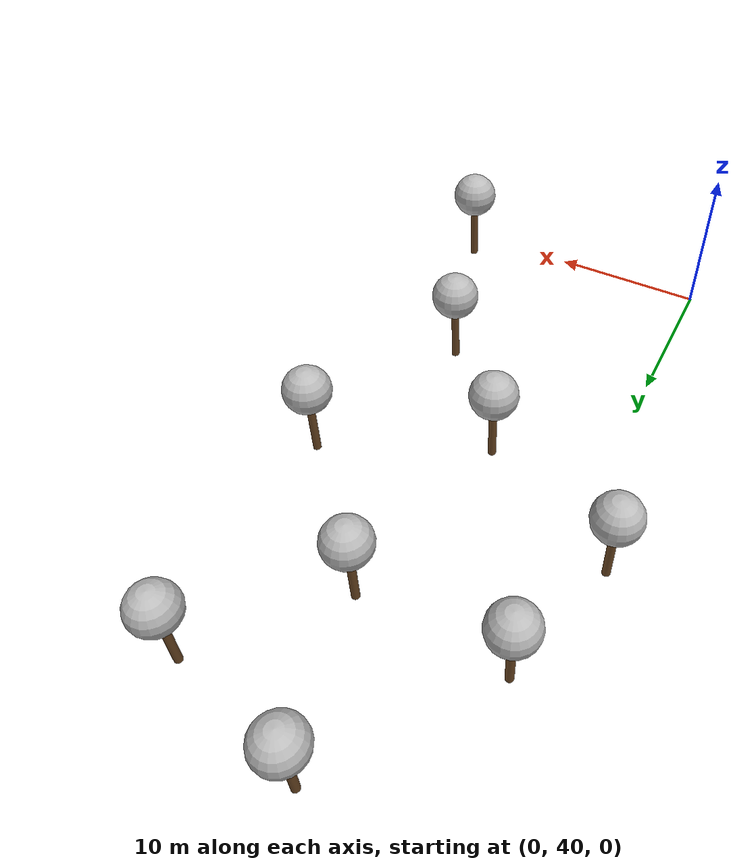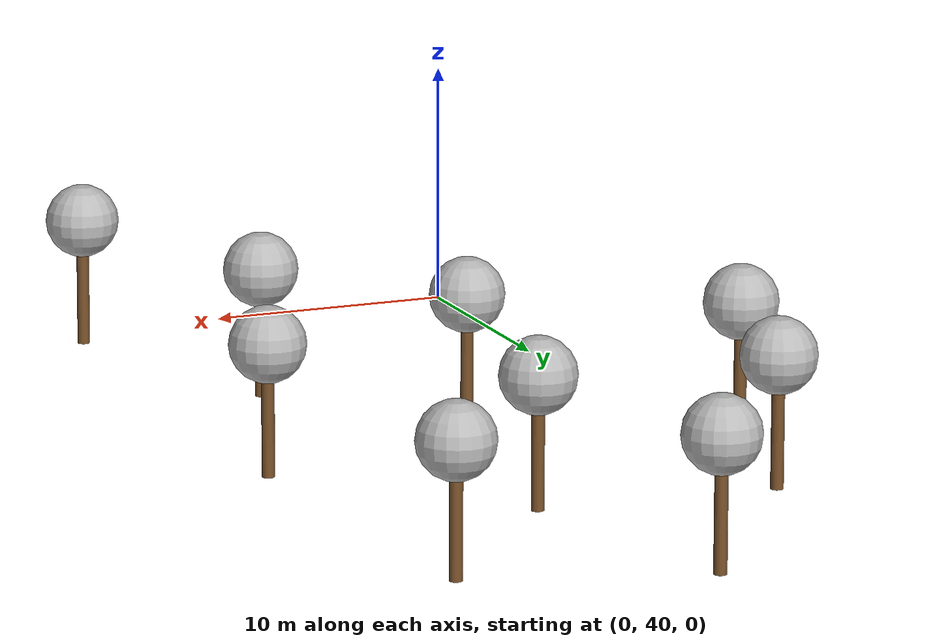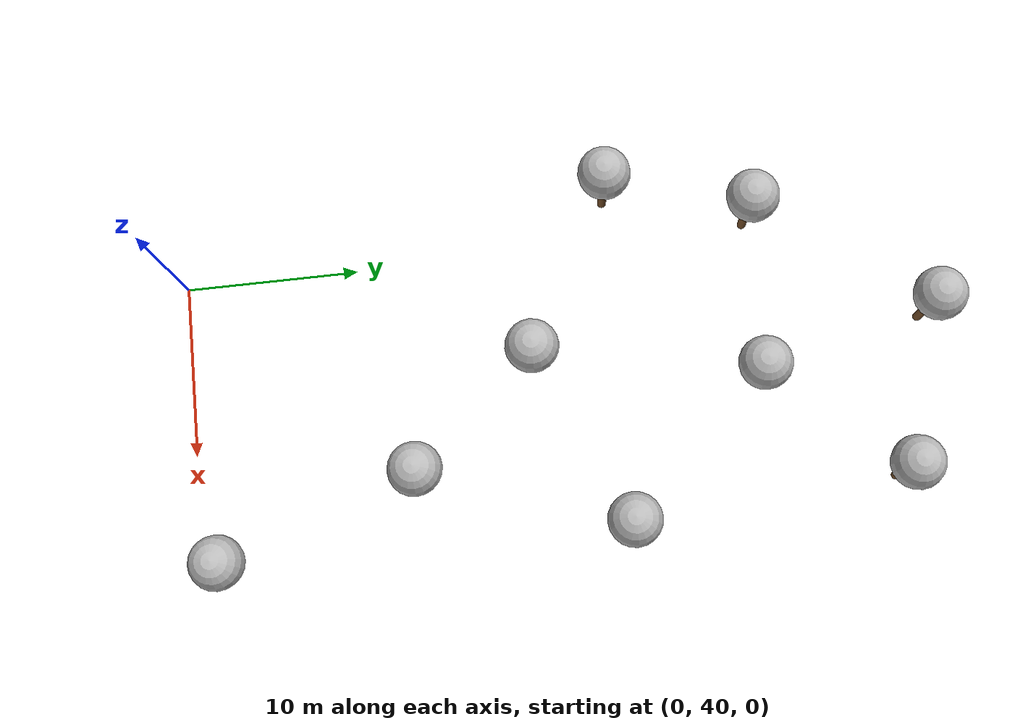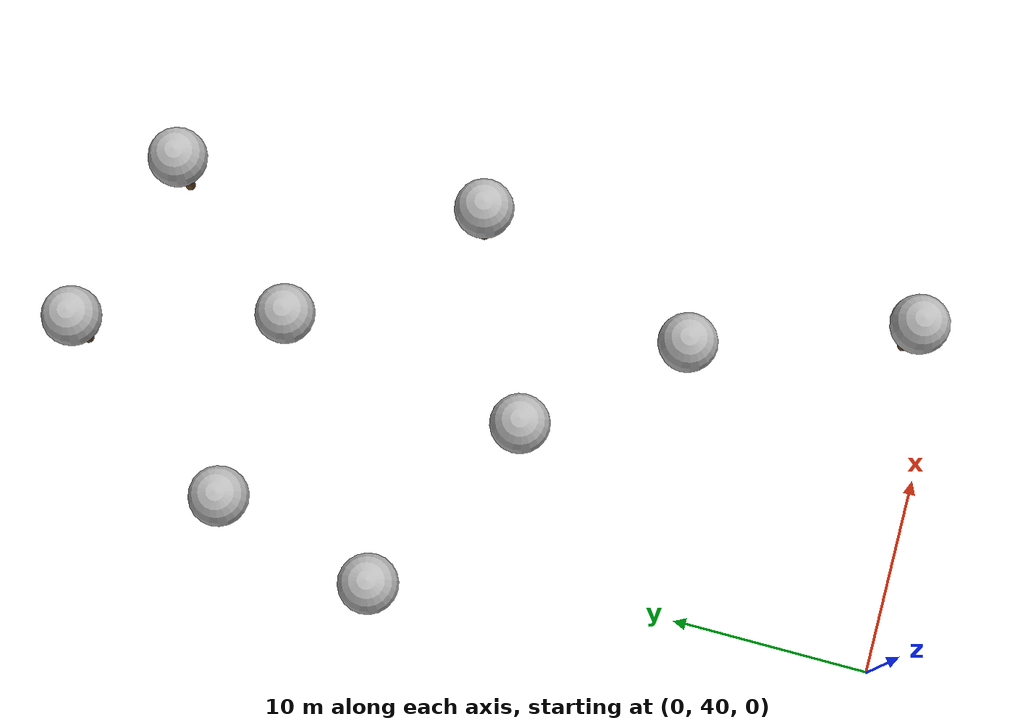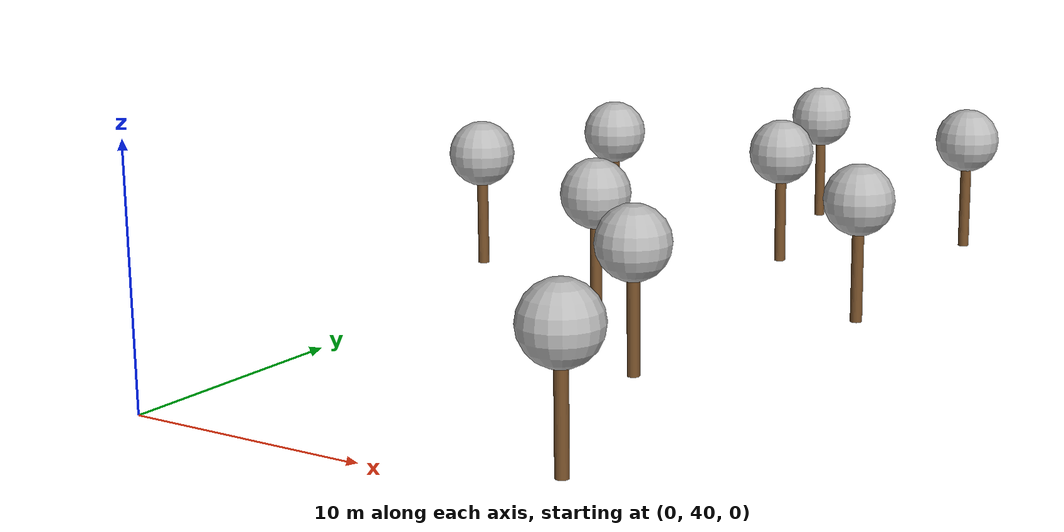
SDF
<sdf version="1.7">
 <world name="default">
  <model name="tree_simple">
   <static>1</static>
   <link name="link">
    <pose>0 0 0.1 0 -0 0</pose>
    <inertial>
     <mass>666</mass>
     <inertia>
      <ixx>0.0861167</ixx>
      <ixy>0</ixy>
      <ixz>0</ixz>
      <iyy>0.0861167</iyy>
      <iyz>0</iyz>
      <izz>0.0861167</izz>
     </inertia>
    </inertial>
    <collision name="collision_trunk">
     <pose>0 0 2 0 -0 0</pose>
     <geometry><cylinder><radius>0.25</radius><length>4</length></cylinder></geometry>
     <surface>
      <contact>
       <poissons_ratio>0.347</poissons_ratio>
       <elastic_modulus>8.8e+09</elastic_modulus>
       <ode><kp>100000</kp><kd>100</kd><max_vel>100</max_vel><min_depth>0.001</min_depth></ode>
      </contact>
      <friction>
       <torsional>
        <coefficient>1</coefficient>
        <use_patch_radius>0</use_patch_radius>
        <surface_radius>0.01</surface_radius>
       </torsional>
      </friction>
     </surface>
    </collision>
    <collision name="collision_treetop">
     <pose>0 0 5.2 0 -0 0</pose>
     <geometry><sphere><radius>1.5</radius></sphere></geometry>
     <surface>
      <contact>
       <poissons_ratio>0.347</poissons_ratio>
       <elastic_modulus>8.8e+09</elastic_modulus>
       <ode><kp>100000</kp><kd>100</kd><max_vel>100</max_vel><min_depth>0.001</min_depth></ode>
      </contact>
      <friction>
       <torsional>
        <coefficient>1</coefficient>
        <use_patch_radius>0</use_patch_radius>
        <surface_radius>0.01</surface_radius>
       </torsional>
      </friction>
     </surface>
    </collision>
    <visual name="trunk">
     <pose>0 0 2 0 -0 0</pose>
     <geometry><cylinder><radius>0.25</radius><length>4</length></cylinder></geometry>
     <material>
      <script>
       <uri>model://tree_simple/scripts</uri>
       <uri>model://tree_simple/materials/textures</uri>
       <name>TreeSimple/Trunk</name>
      </script>
     </material>
    </visual>
    <visual name="treetop">
     <pose>0 0 5.2 0 -0 0</pose>
     <geometry><sphere><radius>1.5</radius></sphere></geometry>
     <material>
      <script>
       <uri>model://tree_simple/scripts</uri>
       <uri>model://tree_simple/materials/textures</uri>
       <name>TreeSimple/Treetop</name>
      </script>
     </material>
    </visual>
   </link>
   <pose>6.82311 59.8354 0 0 -0 0</pose>
  </model>
  <model name="tree_simple_0">
   <static>1</static>
   <link name="link">
    <pose>0 0 0.1 0 -0 0</pose>
    <inertial>
     <mass>666</mass>
     <inertia>
      <ixx>0.0861167</ixx>
      <ixy>0</ixy>
      <ixz>0</ixz>
      <iyy>0.0861167</iyy>
      <iyz>0</iyz>
      <izz>0.0861167</izz>
     </inertia>
    </inertial>
    <collision name="collision_trunk">
     <pose>0 0 2 0 -0 0</pose>
     <geometry><cylinder><radius>0.25</radius><length>4</length></cylinder></geometry>
     <surface>
      <contact>
       <poissons_ratio>0.347</poissons_ratio>
       <elastic_modulus>8.8e+09</elastic_modulus>
       <ode><kp>100000</kp><kd>100</kd><max_vel>100</max_vel><min_depth>0.001</min_depth></ode>
      </contact>
      <friction>
       <torsional>
        <coefficient>1</coefficient>
        <use_patch_radius>0</use_patch_radius>
        <surface_radius>0.01</surface_radius>
       </torsional>
      </friction>
     </surface>
    </collision>
    <collision name="collision_treetop">
     <pose>0 0 5.2 0 -0 0</pose>
     <geometry><sphere><radius>1.5</radius></sphere></geometry>
     <surface>
      <contact>
       <poissons_ratio>0.347</poissons_ratio>
       <elastic_modulus>8.8e+09</elastic_modulus>
       <ode><kp>100000</kp><kd>100</kd><max_vel>100</max_vel><min_depth>0.001</min_depth></ode>
      </contact>
      <friction>
       <torsional>
        <coefficient>1</coefficient>
        <use_patch_radius>0</use_patch_radius>
        <surface_radius>0.01</surface_radius>
       </torsional>
      </friction>
     </surface>
    </collision>
    <visual name="trunk">
     <pose>0 0 2 0 -0 0</pose>
     <geometry><cylinder><radius>0.25</radius><length>4</length></cylinder></geometry>
     <material>
      <script>
       <uri>model://tree_simple/scripts</uri>
       <uri>model://tree_simple/materials/textures</uri>
       <name>TreeSimple/Trunk</name>
      </script>
     </material>
    </visual>
    <visual name="treetop">
     <pose>0 0 5.2 0 -0 0</pose>
     <geometry><sphere><radius>1.5</radius></sphere></geometry>
     <material>
      <script>
       <uri>model://tree_simple/scripts</uri>
       <uri>model://tree_simple/materials/textures</uri>
       <name>TreeSimple/Treetop</name>
      </script>
     </material>
    </visual>
   </link>
   <pose>12.8669 52.9052 0 0 -0 0</pose>
  </model>
  <model name="tree_simple_0_clone">
   <static>1</static>
   <link name="link">
    <pose>0 0 0.1 0 -0 0</pose>
    <inertial>
     <mass>666</mass>
     <inertia>
      <ixx>0.0861167</ixx>
      <ixy>0</ixy>
      <ixz>0</ixz>
      <iyy>0.0861167</iyy>
      <iyz>0</iyz>
      <izz>0.0861167</izz>
     </inertia>
    </inertial>
    <collision name="collision_trunk">
     <pose>0 0 2 0 -0 0</pose>
     <geometry><cylinder><radius>0.25</radius><length>4</length></cylinder></geometry>
     <surface>
      <contact>
       <poissons_ratio>0.347</poissons_ratio>
       <elastic_modulus>8.8e+09</elastic_modulus>
       <ode><kp>100000</kp><kd>100</kd><max_vel>100</max_vel><min_depth>0.001</min_depth></ode>
      </contact>
      <friction>
       <torsional>
        <coefficient>1</coefficient>
        <use_patch_radius>0</use_patch_radius>
        <surface_radius>0.01</surface_radius>
       </torsional>
      </friction>
     </surface>
    </collision>
    <collision name="collision_treetop">
     <pose>0 0 5.2 0 -0 0</pose>
     <geometry><sphere><radius>1.5</radius></sphere></geometry>
     <surface>
      <contact>
       <poissons_ratio>0.347</poissons_ratio>
       <elastic_modulus>8.8e+09</elastic_modulus>
       <ode><kp>100000</kp><kd>100</kd><max_vel>100</max_vel><min_depth>0.001</min_depth></ode>
      </contact>
      <friction>
       <torsional>
        <coefficient>1</coefficient>
        <use_patch_radius>0</use_patch_radius>
        <surface_radius>0.01</surface_radius>
       </torsional>
      </friction>
     </surface>
    </collision>
    <visual name="trunk">
     <pose>0 0 2 0 -0 0</pose>
     <geometry><cylinder><radius>0.25</radius><length>4</length></cylinder></geometry>
     <material>
      <script>
       <uri>model://tree_simple/scripts</uri>
       <uri>model://tree_simple/materials/textures</uri>
       <name>TreeSimple/Trunk</name>
      </script>
     </material>
    </visual>
    <visual name="treetop">
     <pose>0 0 5.2 0 -0 0</pose>
     <geometry><sphere><radius>1.5</radius></sphere></geometry>
     <material>
      <script>
       <uri>model://tree_simple/scripts</uri>
       <uri>model://tree_simple/materials/textures</uri>
       <name>TreeSimple/Treetop</name>
      </script>
     </material>
    </visual>
   </link>
   <pose>16.8324 64.3347 0 0 -0 0</pose>
  </model>
  <model name="tree_simple_0_clone_0">
   <static>1</static>
   <link name="link">
    <pose>0 0 0.1 0 -0 0</pose>
    <inertial>
     <mass>666</mass>
     <inertia>
      <ixx>0.0861167</ixx>
      <ixy>0</ixy>
      <ixz>0</ixz>
      <iyy>0.0861167</iyy>
      <iyz>0</iyz>
      <izz>0.0861167</izz>
     </inertia>
    </inertial>
    <collision name="collision_trunk">
     <pose>0 0 2 0 -0 0</pose>
     <geometry><cylinder><radius>0.25</radius><length>4</length></cylinder></geometry>
     <surface>
      <contact>
       <poissons_ratio>0.347</poissons_ratio>
       <elastic_modulus>8.8e+09</elastic_modulus>
       <ode><kp>100000</kp><kd>100</kd><max_vel>100</max_vel><min_depth>0.001</min_depth></ode>
      </contact>
      <friction>
       <torsional>
        <coefficient>1</coefficient>
        <use_patch_radius>0</use_patch_radius>
        <surface_radius>0.01</surface_radius>
       </torsional>
      </friction>
     </surface>
    </collision>
    <collision name="collision_treetop">
     <pose>0 0 5.2 0 -0 0</pose>
     <geometry><sphere><radius>1.5</radius></sphere></geometry>
     <surface>
      <contact>
       <poissons_ratio>0.347</poissons_ratio>
       <elastic_modulus>8.8e+09</elastic_modulus>
       <ode><kp>100000</kp><kd>100</kd><max_vel>100</max_vel><min_depth>0.001</min_depth></ode>
      </contact>
      <friction>
       <torsional>
        <coefficient>1</coefficient>
        <use_patch_radius>0</use_patch_radius>
        <surface_radius>0.01</surface_radius>
       </torsional>
      </friction>
     </surface>
    </collision>
    <visual name="trunk">
     <pose>0 0 2 0 -0 0</pose>
     <geometry><cylinder><radius>0.25</radius><length>4</length></cylinder></geometry>
     <material>
      <script>
       <uri>model://tree_simple/scripts</uri>
       <uri>model://tree_simple/materials/textures</uri>
       <name>TreeSimple/Trunk</name>
      </script>
     </material>
    </visual>
    <visual name="treetop">
     <pose>0 0 5.2 0 -0 0</pose>
     <geometry><sphere><radius>1.5</radius></sphere></geometry>
     <material>
      <script>
       <uri>model://tree_simple/scripts</uri>
       <uri>model://tree_simple/materials/textures</uri>
       <name>TreeSimple/Treetop</name>
      </script>
     </material>
    </visual>
   </link>
   <pose>-2.64272 64.897 0 0 -0 0</pose>
  </model>
  <model name="tree_simple_0_clone_0_clone_clone_0">
   <static>1</static>
   <link name="link">
    <pose>0 0 0.1 0 -0 0</pose>
    <inertial>
     <mass>666</mass>
     <inertia>
      <ixx>0.0861167</ixx>
      <ixy>0</ixy>
      <ixz>0</ixz>
      <iyy>0.0861167</iyy>
      <iyz>0</iyz>
      <izz>0.0861167</izz>
     </inertia>
    </inertial>
    <collision name="collision_trunk">
     <pose>0 0 2 0 -0 0</pose>
     <geometry><cylinder><radius>0.25</radius><length>4</length></cylinder></geometry>
     <surface>
      <contact>
       <poissons_ratio>0.347</poissons_ratio>
       <elastic_modulus>8.8e+09</elastic_modulus>
       <ode><kp>100000</kp><kd>100</kd><max_vel>100</max_vel><min_depth>0.001</min_depth></ode>
      </contact>
      <friction>
       <torsional>
        <coefficient>1</coefficient>
        <use_patch_radius>0</use_patch_radius>
        <surface_radius>0.01</surface_radius>
       </torsional>
      </friction>
     </surface>
    </collision>
    <collision name="collision_treetop">
     <pose>0 0 5.2 0 -0 0</pose>
     <geometry><sphere><radius>1.5</radius></sphere></geometry>
     <surface>
      <contact>
       <poissons_ratio>0.347</poissons_ratio>
       <elastic_modulus>8.8e+09</elastic_modulus>
       <ode><kp>100000</kp><kd>100</kd><max_vel>100</max_vel><min_depth>0.001</min_depth></ode>
      </contact>
      <friction>
       <torsional>
        <coefficient>1</coefficient>
        <use_patch_radius>0</use_patch_radius>
        <surface_radius>0.01</surface_radius>
       </torsional>
      </friction>
     </surface>
    </collision>
    <visual name="trunk">
     <pose>0 0 2 0 -0 0</pose>
     <geometry><cylinder><radius>0.25</radius><length>4</length></cylinder></geometry>
     <material>
      <script>
       <uri>model://tree_simple/scripts</uri>
       <uri>model://tree_simple/materials/textures</uri>
       <name>TreeSimple/Trunk</name>
      </script>
     </material>
    </visual>
    <visual name="treetop">
     <pose>0 0 5.2 0 -0 0</pose>
     <geometry><sphere><radius>1.5</radius></sphere></geometry>
     <material>
      <script>
       <uri>model://tree_simple/scripts</uri>
       <uri>model://tree_simple/materials/textures</uri>
       <name>TreeSimple/Treetop</name>
      </script>
     </material>
    </visual>
   </link>
   <pose>9.13521 72.4249 0 0 -0 0</pose>
  </model>
  <model name="tree_simple_0_clone_0_clone_clone_1">
   <static>1</static>
   <link name="link">
    <pose>0 0 0.1 0 -0 0</pose>
    <inertial>
     <mass>666</mass>
     <inertia>
      <ixx>0.0861167</ixx>
      <ixy>0</ixy>
      <ixz>0</ixz>
      <iyy>0.0861167</iyy>
      <iyz>0</iyz>
      <izz>0.0861167</izz>
     </inertia>
    </inertial>
    <collision name="collision_trunk">
     <pose>0 0 2 0 -0 0</pose>
     <geometry><cylinder><radius>0.25</radius><length>4</length></cylinder></geometry>
     <surface>
      <contact>
       <poissons_ratio>0.347</poissons_ratio>
       <elastic_modulus>8.8e+09</elastic_modulus>
       <ode><kp>100000</kp><kd>100</kd><max_vel>100</max_vel><min_depth>0.001</min_depth></ode>
      </contact>
      <friction>
       <torsional>
        <coefficient>1</coefficient>
        <use_patch_radius>0</use_patch_radius>
        <surface_radius>0.01</surface_radius>
       </torsional>
      </friction>
     </surface>
    </collision>
    <collision name="collision_treetop">
     <pose>0 0 5.2 0 -0 0</pose>
     <geometry><sphere><radius>1.5</radius></sphere></geometry>
     <surface>
      <contact>
       <poissons_ratio>0.347</poissons_ratio>
       <elastic_modulus>8.8e+09</elastic_modulus>
       <ode><kp>100000</kp><kd>100</kd><max_vel>100</max_vel><min_depth>0.001</min_depth></ode>
      </contact>
      <friction>
       <torsional>
        <coefficient>1</coefficient>
        <use_patch_radius>0</use_patch_radius>
        <surface_radius>0.01</surface_radius>
       </torsional>
      </friction>
     </surface>
    </collision>
    <visual name="trunk">
     <pose>0 0 2 0 -0 0</pose>
     <geometry><cylinder><radius>0.25</radius><length>4</length></cylinder></geometry>
     <material>
      <script>
       <uri>model://tree_simple/scripts</uri>
       <uri>model://tree_simple/materials/textures</uri>
       <name>TreeSimple/Trunk</name>
      </script>
     </material>
    </visual>
    <visual name="treetop">
     <pose>0 0 5.2 0 -0 0</pose>
     <geometry><sphere><radius>1.5</radius></sphere></geometry>
     <material>
      <script>
       <uri>model://tree_simple/scripts</uri>
       <uri>model://tree_simple/materials/textures</uri>
       <name>TreeSimple/Treetop</name>
      </script>
     </material>
    </visual>
   </link>
   <pose>16.7121 42.102 0 0 -0 0</pose>
  </model>
  <model name="tree_simple_0_clone_0_clone_clone_9">
   <static>1</static>
   <link name="link">
    <pose>0 0 0.1 0 -0 0</pose>
    <inertial>
     <mass>666</mass>
     <inertia>
      <ixx>0.0861167</ixx>
      <ixy>0</ixy>
      <ixz>0</ixz>
      <iyy>0.0861167</iyy>
      <iyz>0</iyz>
      <izz>0.0861167</izz>
     </inertia>
    </inertial>
    <collision name="collision_trunk">
     <pose>0 0 2 0 -0 0</pose>
     <geometry><cylinder><radius>0.25</radius><length>4</length></cylinder></geometry>
     <surface>
      <contact>
       <poissons_ratio>0.347</poissons_ratio>
       <elastic_modulus>8.8e+09</elastic_modulus>
       <ode><kp>100000</kp><kd>100</kd><max_vel>100</max_vel><min_depth>0.001</min_depth></ode>
      </contact>
      <friction>
       <torsional>
        <coefficient>1</coefficient>
        <use_patch_radius>0</use_patch_radius>
        <surface_radius>0.01</surface_radius>
       </torsional>
      </friction>
     </surface>
    </collision>
    <collision name="collision_treetop">
     <pose>0 0 5.2 0 -0 0</pose>
     <geometry><sphere><radius>1.5</radius></sphere></geometry>
     <surface>
      <contact>
       <poissons_ratio>0.347</poissons_ratio>
       <elastic_modulus>8.8e+09</elastic_modulus>
       <ode><kp>100000</kp><kd>100</kd><max_vel>100</max_vel><min_depth>0.001</min_depth></ode>
      </contact>
      <friction>
       <torsional>
        <coefficient>1</coefficient>
        <use_patch_radius>0</use_patch_radius>
        <surface_radius>0.01</surface_radius>
       </torsional>
      </friction>
     </surface>
    </collision>
    <visual name="trunk">
     <pose>0 0 2 0 -0 0</pose>
     <geometry><cylinder><radius>0.25</radius><length>4</length></cylinder></geometry>
     <material>
      <script>
       <uri>model://tree_simple/scripts</uri>
       <uri>model://tree_simple/materials/textures</uri>
       <name>TreeSimple/Trunk</name>
      </script>
     </material>
    </visual>
    <visual name="treetop">
     <pose>0 0 5.2 0 -0 0</pose>
     <geometry><sphere><radius>1.5</radius></sphere></geometry>
     <material>
      <script>
       <uri>model://tree_simple/scripts</uri>
       <uri>model://tree_simple/materials/textures</uri>
       <name>TreeSimple/Treetop</name>
      </script>
     </material>
    </visual>
   </link>
   <pose>-0.415016 73.0445 0 0 -0 0</pose>
  </model>
  <model name="tree_simple_0_clone_0_clone_clone_11_clone_1">
   <static>1</static>
   <link name="link">
    <pose>0 0 0.1 0 -0 0</pose>
    <inertial>
     <mass>666</mass>
     <inertia>
      <ixx>0.0861167</ixx>
      <ixy>0</ixy>
      <ixz>0</ixz>
      <iyy>0.0861167</iyy>
      <iyz>0</iyz>
      <izz>0.0861167</izz>
     </inertia>
    </inertial>
    <collision name="collision_trunk">
     <pose>0 0 2 0 -0 0</pose>
     <geometry><cylinder><radius>0.25</radius><length>4</length></cylinder></geometry>
     <surface>
      <contact>
       <poissons_ratio>0.347</poissons_ratio>
       <elastic_modulus>8.8e+09</elastic_modulus>
       <ode><kp>100000</kp><kd>100</kd><max_vel>100</max_vel><min_depth>0.001</min_depth></ode>
      </contact>
      <friction>
       <torsional>
        <coefficient>1</coefficient>
        <use_patch_radius>0</use_patch_radius>
        <surface_radius>0.01</surface_radius>
       </torsional>
      </friction>
     </surface>
    </collision>
    <collision name="collision_treetop">
     <pose>0 0 5.2 0 -0 0</pose>
     <geometry><sphere><radius>1.5</radius></sphere></geometry>
     <surface>
      <contact>
       <poissons_ratio>0.347</poissons_ratio>
       <elastic_modulus>8.8e+09</elastic_modulus>
       <ode><kp>100000</kp><kd>100</kd><max_vel>100</max_vel><min_depth>0.001</min_depth></ode>
      </contact>
      <friction>
       <torsional>
        <coefficient>1</coefficient>
        <use_patch_radius>0</use_patch_radius>
        <surface_radius>0.01</surface_radius>
       </torsional>
      </friction>
     </surface>
    </collision>
    <visual name="trunk">
     <pose>0 0 2 0 -0 0</pose>
     <geometry><cylinder><radius>0.25</radius><length>4</length></cylinder></geometry>
     <material>
      <script>
       <uri>model://tree_simple/scripts</uri>
       <uri>model://tree_simple/materials/textures</uri>
       <name>TreeSimple/Trunk</name>
      </script>
     </material>
    </visual>
    <visual name="treetop">
     <pose>0 0 5.2 0 -0 0</pose>
     <geometry><sphere><radius>1.5</radius></sphere></geometry>
     <material>
      <script>
       <uri>model://tree_simple/scripts</uri>
       <uri>model://tree_simple/materials/textures</uri>
       <name>TreeSimple/Treetop</name>
      </script>
     </material>
    </visual>
   </link>
   <pose>6.31212 82.5438 0 0 -0 0</pose>
  </model>
  <model name="tree_simple_0_clone_0_clone_clone_11_clone_2">
   <static>1</static>
   <link name="link">
    <pose>0 0 0.1 0 -0 0</pose>
    <inertial>
     <mass>666</mass>
     <inertia>
      <ixx>0.0861167</ixx>
      <ixy>0</ixy>
      <ixz>0</ixz>
      <iyy>0.0861167</iyy>
      <iyz>0</iyz>
      <izz>0.0861167</izz>
     </inertia>
    </inertial>
    <collision name="collision_trunk">
     <pose>0 0 2 0 -0 0</pose>
     <geometry><cylinder><radius>0.25</radius><length>4</length></cylinder></geometry>
     <surface>
      <contact>
       <poissons_ratio>0.347</poissons_ratio>
       <elastic_modulus>8.8e+09</elastic_modulus>
       <ode><kp>100000</kp><kd>100</kd><max_vel>100</max_vel><min_depth>0.001</min_depth></ode>
      </contact>
      <friction>
       <torsional>
        <coefficient>1</coefficient>
        <use_patch_radius>0</use_patch_radius>
        <surface_radius>0.01</surface_radius>
       </torsional>
      </friction>
     </surface>
    </collision>
    <collision name="collision_treetop">
     <pose>0 0 5.2 0 -0 0</pose>
     <geometry><sphere><radius>1.5</radius></sphere></geometry>
     <surface>
      <contact>
       <poissons_ratio>0.347</poissons_ratio>
       <elastic_modulus>8.8e+09</elastic_modulus>
       <ode><kp>100000</kp><kd>100</kd><max_vel>100</max_vel><min_depth>0.001</min_depth></ode>
      </contact>
      <friction>
       <torsional>
        <coefficient>1</coefficient>
        <use_patch_radius>0</use_patch_radius>
        <surface_radius>0.01</surface_radius>
       </torsional>
      </friction>
     </surface>
    </collision>
    <visual name="trunk">
     <pose>0 0 2 0 -0 0</pose>
     <geometry><cylinder><radius>0.25</radius><length>4</length></cylinder></geometry>
     <material>
      <script>
       <uri>model://tree_simple/scripts</uri>
       <uri>model://tree_simple/materials/textures</uri>
       <name>TreeSimple/Trunk</name>
      </script>
     </material>
    </visual>
    <visual name="treetop">
     <pose>0 0 5.2 0 -0 0</pose>
     <geometry><sphere><radius>1.5</radius></sphere></geometry>
     <material>
      <script>
       <uri>model://tree_simple/scripts</uri>
       <uri>model://tree_simple/materials/textures</uri>
       <name>TreeSimple/Treetop</name>
      </script>
     </material>
    </visual>
   </link>
   <pose>15.4317 79.7817 0 0 -0 0</pose>
  </model>
 </world>
</sdf>
